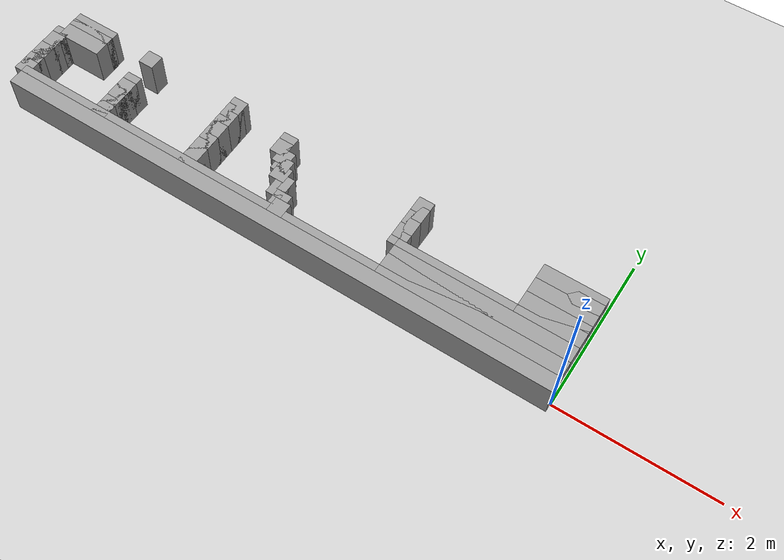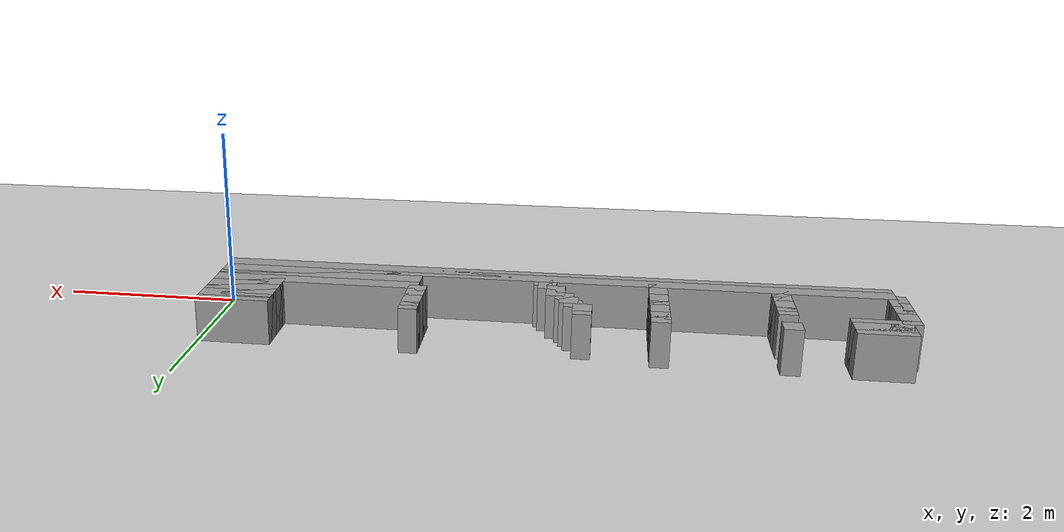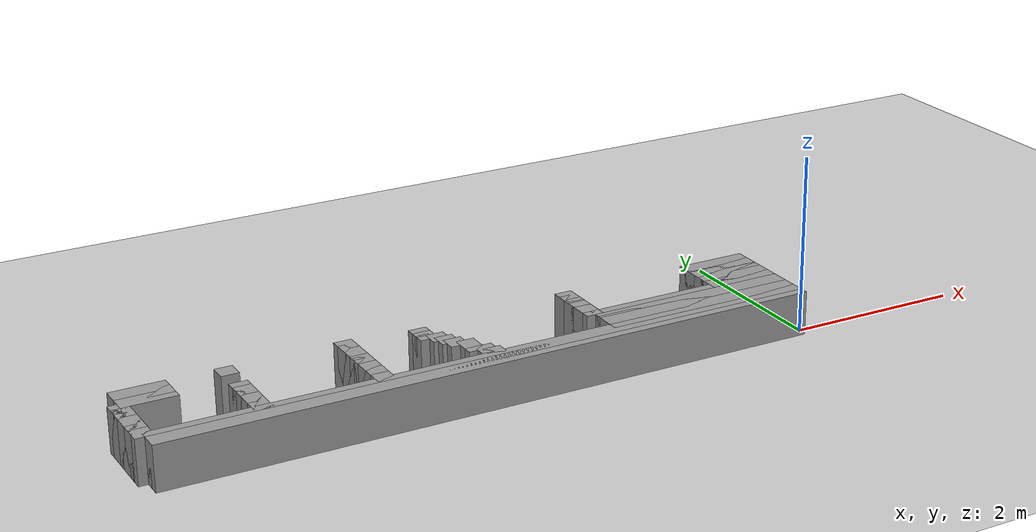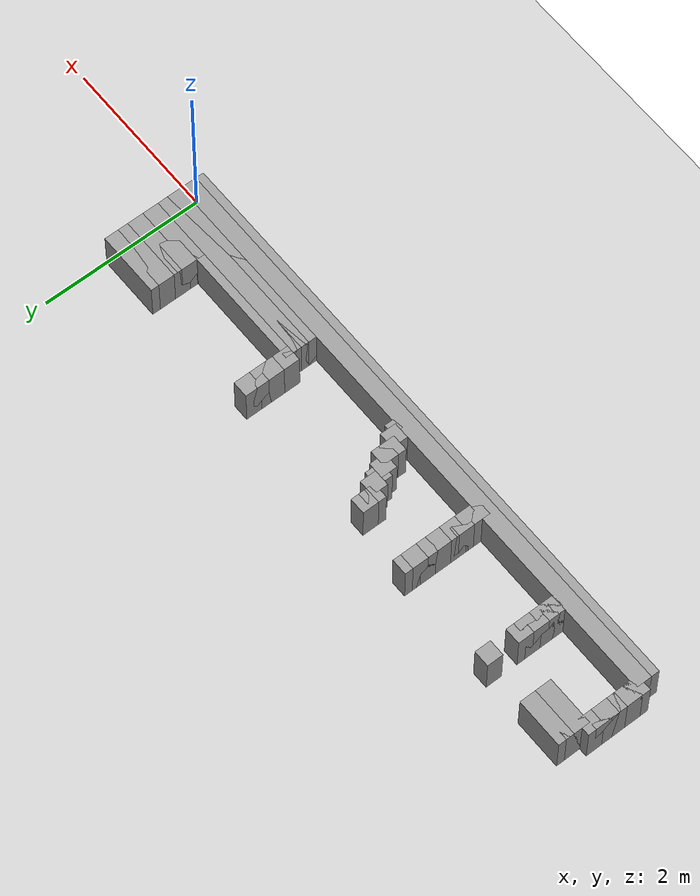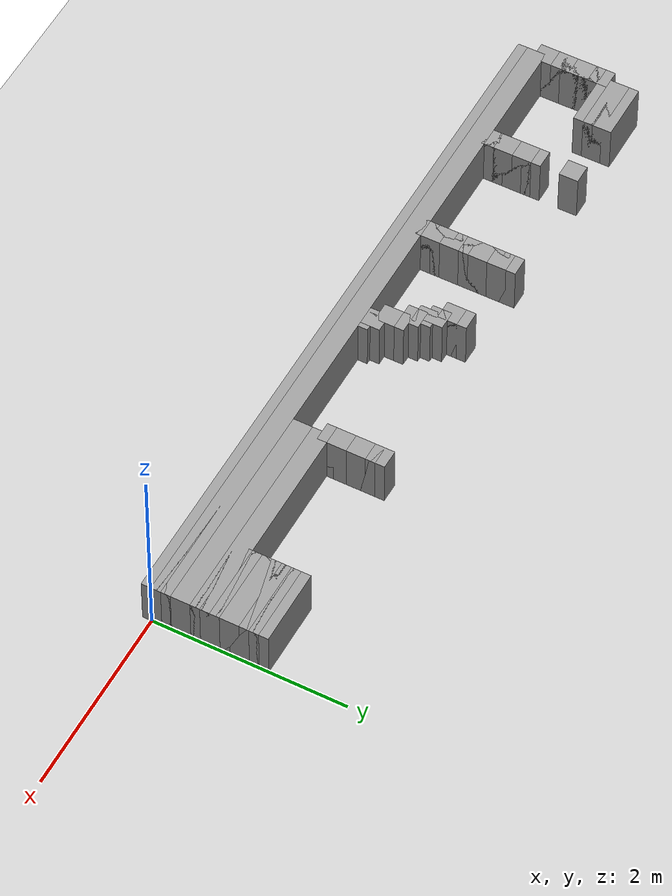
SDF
<sdf version="1.6">
 <world name="GridMap">
  <include><uri>model://sun</uri></include>
  <include><uri>model://ground_plane</uri></include>
  <model name="GridMap">
   <link name="Wall_(37.0,0.0)">
    <collision name="Wall_(37.0,0.0)_Collision">
     <geometry><box><size>7.4 0.2 0.5</size></box></geometry>
     <pose>-3.7 0.0 0.25 0 -0 0</pose>
    </collision>
    <inertial>
     <mass>0.5</mass>
     <pose>0 0.01 0 0 0 0</pose>
     <inertia><ixx>0.004</ixx><ixy>0.001</ixy><ixz>0</ixz><iyy>0.006</iyy><iyz>0</iyz><izz>0.007</izz></inertia>
    </inertial>
    <visual name="Wall_(37.0,0.0)_Visual">
     <geometry><box><size>7.4 0.2 0.5</size></box></geometry>
     <pose>-3.7 0.0 0.25 0 -0 0</pose>
     <material>
      <script><uri>file://media/materials/scripts/gazebo.material</uri><name>Gazebo/Grey</name></script>
      <ambient>1 1 1 1</ambient>
     </material>
     <meta><layer>0</layer></meta>
    </visual>
   </link>
   <link name="Wall_(37.0,1.0)">
    <collision name="Wall_(37.0,1.0)_Collision">
     <geometry><box><size>7.4 0.2 0.5</size></box></geometry>
     <pose>-3.7 0.1 0.25 0 -0 0</pose>
    </collision>
    <inertial>
     <mass>0.5</mass>
     <pose>0 0.01 0 0 0 0</pose>
     <inertia><ixx>0.004</ixx><ixy>0.001</ixy><ixz>0</ixz><iyy>0.006</iyy><iyz>0</iyz><izz>0.007</izz></inertia>
    </inertial>
    <visual name="Wall_(37.0,1.0)_Visual">
     <geometry><box><size>7.4 0.2 0.5</size></box></geometry>
     <pose>-3.7 0.1 0.25 0 -0 0</pose>
     <material>
      <script><uri>file://media/materials/scripts/gazebo.material</uri><name>Gazebo/Grey</name></script>
      <ambient>1 1 1 1</ambient>
     </material>
     <meta><layer>0</layer></meta>
    </visual>
   </link>
   <link name="Wall_(11.5,2.0)">
    <collision name="Wall_(11.5,2.0)_Collision">
     <geometry><box><size>2.3000000000000003 0.2 0.5</size></box></geometry>
     <pose>-1.1500000000000001 0.2 0.25 0 -0 0</pose>
    </collision>
    <inertial>
     <mass>0.5</mass>
     <pose>0 0.01 0 0 0 0</pose>
     <inertia><ixx>0.004</ixx><ixy>0.001</ixy><ixz>0</ixz><iyy>0.006</iyy><iyz>0</iyz><izz>0.007</izz></inertia>
    </inertial>
    <visual name="Wall_(11.5,2.0)_Visual">
     <geometry><box><size>2.3000000000000003 0.2 0.5</size></box></geometry>
     <pose>-1.1500000000000001 0.2 0.25 0 -0 0</pose>
     <material>
      <script><uri>file://media/materials/scripts/gazebo.material</uri><name>Gazebo/Grey</name></script>
      <ambient>1 1 1 1</ambient>
     </material>
     <meta><layer>0</layer></meta>
    </visual>
   </link>
   <link name="Wall_(36.5,2.0)">
    <collision name="Wall_(36.5,2.0)_Collision">
     <geometry><box><size>0.2 0.2 0.5</size></box></geometry>
     <pose>-3.6500000000000004 0.2 0.25 0 -0 0</pose>
    </collision>
    <inertial>
     <mass>0.5</mass>
     <pose>0 0.01 0 0 0 0</pose>
     <inertia><ixx>0.004</ixx><ixy>0.001</ixy><ixz>0</ixz><iyy>0.006</iyy><iyz>0</iyz><izz>0.007</izz></inertia>
    </inertial>
    <visual name="Wall_(36.5,2.0)_Visual">
     <geometry><box><size>0.2 0.2 0.5</size></box></geometry>
     <pose>-3.6500000000000004 0.2 0.25 0 -0 0</pose>
     <material>
      <script><uri>file://media/materials/scripts/gazebo.material</uri><name>Gazebo/Grey</name></script>
      <ambient>1 1 1 1</ambient>
     </material>
     <meta><layer>0</layer></meta>
    </visual>
   </link>
   <link name="Wall_(49.0,2.0)">
    <collision name="Wall_(49.0,2.0)_Collision">
     <geometry><box><size>0.2 0.2 0.5</size></box></geometry>
     <pose>-4.9 0.2 0.25 0 -0 0</pose>
    </collision>
    <inertial>
     <mass>0.5</mass>
     <pose>0 0.01 0 0 0 0</pose>
     <inertia><ixx>0.004</ixx><ixy>0.001</ixy><ixz>0</ixz><iyy>0.006</iyy><iyz>0</iyz><izz>0.007</izz></inertia>
    </inertial>
    <visual name="Wall_(49.0,2.0)_Visual">
     <geometry><box><size>0.2 0.2 0.5</size></box></geometry>
     <pose>-4.9 0.2 0.25 0 -0 0</pose>
     <material>
      <script><uri>file://media/materials/scripts/gazebo.material</uri><name>Gazebo/Grey</name></script>
      <ambient>1 1 1 1</ambient>
     </material>
     <meta><layer>0</layer></meta>
    </visual>
   </link>
   <link name="Wall_(62.0,2.0)">
    <collision name="Wall_(62.0,2.0)_Collision">
     <geometry><box><size>0.2 0.2 0.5</size></box></geometry>
     <pose>-6.2 0.2 0.25 0 -0 0</pose>
    </collision>
    <inertial>
     <mass>0.5</mass>
     <pose>0 0.01 0 0 0 0</pose>
     <inertia><ixx>0.004</ixx><ixy>0.001</ixy><ixz>0</ixz><iyy>0.006</iyy><iyz>0</iyz><izz>0.007</izz></inertia>
    </inertial>
    <visual name="Wall_(62.0,2.0)_Visual">
     <geometry><box><size>0.2 0.2 0.5</size></box></geometry>
     <pose>-6.2 0.2 0.25 0 -0 0</pose>
     <material>
      <script><uri>file://media/materials/scripts/gazebo.material</uri><name>Gazebo/Grey</name></script>
      <ambient>1 1 1 1</ambient>
     </material>
     <meta><layer>0</layer></meta>
    </visual>
   </link>
   <link name="Wall_(74.0,2.0)">
    <collision name="Wall_(74.0,2.0)_Collision">
     <geometry><box><size>0.2 0.2 0.5</size></box></geometry>
     <pose>-7.4 0.2 0.25 0 -0 0</pose>
    </collision>
    <inertial>
     <mass>0.5</mass>
     <pose>0 0.01 0 0 0 0</pose>
     <inertia><ixx>0.004</ixx><ixy>0.001</ixy><ixz>0</ixz><iyy>0.006</iyy><iyz>0</iyz><izz>0.007</izz></inertia>
    </inertial>
    <visual name="Wall_(74.0,2.0)_Visual">
     <geometry><box><size>0.2 0.2 0.5</size></box></geometry>
     <pose>-7.4 0.2 0.25 0 -0 0</pose>
     <material>
      <script><uri>file://media/materials/scripts/gazebo.material</uri><name>Gazebo/Grey</name></script>
      <ambient>1 1 1 1</ambient>
     </material>
     <meta><layer>0</layer></meta>
    </visual>
   </link>
   <link name="Wall_(11.5,3.0)">
    <collision name="Wall_(11.5,3.0)_Collision">
     <geometry><box><size>2.3000000000000003 0.2 0.5</size></box></geometry>
     <pose>-1.1500000000000001 0.30000000000000004 0.25 0 -0 0</pose>
    </collision>
    <inertial>
     <mass>0.5</mass>
     <pose>0 0.01 0 0 0 0</pose>
     <inertia><ixx>0.004</ixx><ixy>0.001</ixy><ixz>0</ixz><iyy>0.006</iyy><iyz>0</iyz><izz>0.007</izz></inertia>
    </inertial>
    <visual name="Wall_(11.5,3.0)_Visual">
     <geometry><box><size>2.3000000000000003 0.2 0.5</size></box></geometry>
     <pose>-1.1500000000000001 0.30000000000000004 0.25 0 -0 0</pose>
     <material>
      <script><uri>file://media/materials/scripts/gazebo.material</uri><name>Gazebo/Grey</name></script>
      <ambient>1 1 1 1</ambient>
     </material>
     <meta><layer>0</layer></meta>
    </visual>
   </link>
   <link name="Wall_(37.0,3.0)">
    <collision name="Wall_(37.0,3.0)_Collision">
     <geometry><box><size>0.2 0.2 0.5</size></box></geometry>
     <pose>-3.7 0.30000000000000004 0.25 0 -0 0</pose>
    </collision>
    <inertial>
     <mass>0.5</mass>
     <pose>0 0.01 0 0 0 0</pose>
     <inertia><ixx>0.004</ixx><ixy>0.001</ixy><ixz>0</ixz><iyy>0.006</iyy><iyz>0</iyz><izz>0.007</izz></inertia>
    </inertial>
    <visual name="Wall_(37.0,3.0)_Visual">
     <geometry><box><size>0.2 0.2 0.5</size></box></geometry>
     <pose>-3.7 0.30000000000000004 0.25 0 -0 0</pose>
     <material>
      <script><uri>file://media/materials/scripts/gazebo.material</uri><name>Gazebo/Grey</name></script>
      <ambient>1 1 1 1</ambient>
     </material>
     <meta><layer>0</layer></meta>
    </visual>
   </link>
   <link name="Wall_(49.0,3.0)">
    <collision name="Wall_(49.0,3.0)_Collision">
     <geometry><box><size>0.2 0.2 0.5</size></box></geometry>
     <pose>-4.9 0.30000000000000004 0.25 0 -0 0</pose>
    </collision>
    <inertial>
     <mass>0.5</mass>
     <pose>0 0.01 0 0 0 0</pose>
     <inertia><ixx>0.004</ixx><ixy>0.001</ixy><ixz>0</ixz><iyy>0.006</iyy><iyz>0</iyz><izz>0.007</izz></inertia>
    </inertial>
    <visual name="Wall_(49.0,3.0)_Visual">
     <geometry><box><size>0.2 0.2 0.5</size></box></geometry>
     <pose>-4.9 0.30000000000000004 0.25 0 -0 0</pose>
     <material>
      <script><uri>file://media/materials/scripts/gazebo.material</uri><name>Gazebo/Grey</name></script>
      <ambient>1 1 1 1</ambient>
     </material>
     <meta><layer>0</layer></meta>
    </visual>
   </link>
   <link name="Wall_(62.0,3.0)">
    <collision name="Wall_(62.0,3.0)_Collision">
     <geometry><box><size>0.2 0.2 0.5</size></box></geometry>
     <pose>-6.2 0.30000000000000004 0.25 0 -0 0</pose>
    </collision>
    <inertial>
     <mass>0.5</mass>
     <pose>0 0.01 0 0 0 0</pose>
     <inertia><ixx>0.004</ixx><ixy>0.001</ixy><ixz>0</ixz><iyy>0.006</iyy><iyz>0</iyz><izz>0.007</izz></inertia>
    </inertial>
    <visual name="Wall_(62.0,3.0)_Visual">
     <geometry><box><size>0.2 0.2 0.5</size></box></geometry>
     <pose>-6.2 0.30000000000000004 0.25 0 -0 0</pose>
     <material>
      <script><uri>file://media/materials/scripts/gazebo.material</uri><name>Gazebo/Grey</name></script>
      <ambient>1 1 1 1</ambient>
     </material>
     <meta><layer>0</layer></meta>
    </visual>
   </link>
   <link name="Wall_(74.0,3.0)">
    <collision name="Wall_(74.0,3.0)_Collision">
     <geometry><box><size>0.2 0.2 0.5</size></box></geometry>
     <pose>-7.4 0.30000000000000004 0.25 0 -0 0</pose>
    </collision>
    <inertial>
     <mass>0.5</mass>
     <pose>0 0.01 0 0 0 0</pose>
     <inertia><ixx>0.004</ixx><ixy>0.001</ixy><ixz>0</ixz><iyy>0.006</iyy><iyz>0</iyz><izz>0.007</izz></inertia>
    </inertial>
    <visual name="Wall_(74.0,3.0)_Visual">
     <geometry><box><size>0.2 0.2 0.5</size></box></geometry>
     <pose>-7.4 0.30000000000000004 0.25 0 -0 0</pose>
     <material>
      <script><uri>file://media/materials/scripts/gazebo.material</uri><name>Gazebo/Grey</name></script>
      <ambient>1 1 1 1</ambient>
     </material>
     <meta><layer>0</layer></meta>
    </visual>
   </link>
   <link name="Wall_(11.5,4.0)">
    <collision name="Wall_(11.5,4.0)_Collision">
     <geometry><box><size>2.3000000000000003 0.2 0.5</size></box></geometry>
     <pose>-1.1500000000000001 0.4 0.25 0 -0 0</pose>
    </collision>
    <inertial>
     <mass>0.5</mass>
     <pose>0 0.01 0 0 0 0</pose>
     <inertia><ixx>0.004</ixx><ixy>0.001</ixy><ixz>0</ixz><iyy>0.006</iyy><iyz>0</iyz><izz>0.007</izz></inertia>
    </inertial>
    <visual name="Wall_(11.5,4.0)_Visual">
     <geometry><box><size>2.3000000000000003 0.2 0.5</size></box></geometry>
     <pose>-1.1500000000000001 0.4 0.25 0 -0 0</pose>
     <material>
      <script><uri>file://media/materials/scripts/gazebo.material</uri><name>Gazebo/Grey</name></script>
      <ambient>1 1 1 1</ambient>
     </material>
     <meta><layer>0</layer></meta>
    </visual>
   </link>
   <link name="Wall_(38.0,4.0)">
    <collision name="Wall_(38.0,4.0)_Collision">
     <geometry><box><size>0.2 0.2 0.5</size></box></geometry>
     <pose>-3.8000000000000003 0.4 0.25 0 -0 0</pose>
    </collision>
    <inertial>
     <mass>0.5</mass>
     <pose>0 0.01 0 0 0 0</pose>
     <inertia><ixx>0.004</ixx><ixy>0.001</ixy><ixz>0</ixz><iyy>0.006</iyy><iyz>0</iyz><izz>0.007</izz></inertia>
    </inertial>
    <visual name="Wall_(38.0,4.0)_Visual">
     <geometry><box><size>0.2 0.2 0.5</size></box></geometry>
     <pose>-3.8000000000000003 0.4 0.25 0 -0 0</pose>
     <material>
      <script><uri>file://media/materials/scripts/gazebo.material</uri><name>Gazebo/Grey</name></script>
      <ambient>1 1 1 1</ambient>
     </material>
     <meta><layer>0</layer></meta>
    </visual>
   </link>
   <link name="Wall_(49.0,4.0)">
    <collision name="Wall_(49.0,4.0)_Collision">
     <geometry><box><size>0.2 0.2 0.5</size></box></geometry>
     <pose>-4.9 0.4 0.25 0 -0 0</pose>
    </collision>
    <inertial>
     <mass>0.5</mass>
     <pose>0 0.01 0 0 0 0</pose>
     <inertia><ixx>0.004</ixx><ixy>0.001</ixy><ixz>0</ixz><iyy>0.006</iyy><iyz>0</iyz><izz>0.007</izz></inertia>
    </inertial>
    <visual name="Wall_(49.0,4.0)_Visual">
     <geometry><box><size>0.2 0.2 0.5</size></box></geometry>
     <pose>-4.9 0.4 0.25 0 -0 0</pose>
     <material>
      <script><uri>file://media/materials/scripts/gazebo.material</uri><name>Gazebo/Grey</name></script>
      <ambient>1 1 1 1</ambient>
     </material>
     <meta><layer>0</layer></meta>
    </visual>
   </link>
   <link name="Wall_(62.0,4.0)">
    <collision name="Wall_(62.0,4.0)_Collision">
     <geometry><box><size>0.2 0.2 0.5</size></box></geometry>
     <pose>-6.2 0.4 0.25 0 -0 0</pose>
    </collision>
    <inertial>
     <mass>0.5</mass>
     <pose>0 0.01 0 0 0 0</pose>
     <inertia><ixx>0.004</ixx><ixy>0.001</ixy><ixz>0</ixz><iyy>0.006</iyy><iyz>0</iyz><izz>0.007</izz></inertia>
    </inertial>
    <visual name="Wall_(62.0,4.0)_Visual">
     <geometry><box><size>0.2 0.2 0.5</size></box></geometry>
     <pose>-6.2 0.4 0.25 0 -0 0</pose>
     <material>
      <script><uri>file://media/materials/scripts/gazebo.material</uri><name>Gazebo/Grey</name></script>
      <ambient>1 1 1 1</ambient>
     </material>
     <meta><layer>0</layer></meta>
    </visual>
   </link>
   <link name="Wall_(74.0,4.0)">
    <collision name="Wall_(74.0,4.0)_Collision">
     <geometry><box><size>0.2 0.2 0.5</size></box></geometry>
     <pose>-7.4 0.4 0.25 0 -0 0</pose>
    </collision>
    <inertial>
     <mass>0.5</mass>
     <pose>0 0.01 0 0 0 0</pose>
     <inertia><ixx>0.004</ixx><ixy>0.001</ixy><ixz>0</ixz><iyy>0.006</iyy><iyz>0</iyz><izz>0.007</izz></inertia>
    </inertial>
    <visual name="Wall_(74.0,4.0)_Visual">
     <geometry><box><size>0.2 0.2 0.5</size></box></geometry>
     <pose>-7.4 0.4 0.25 0 -0 0</pose>
     <material>
      <script><uri>file://media/materials/scripts/gazebo.material</uri><name>Gazebo/Grey</name></script>
      <ambient>1 1 1 1</ambient>
     </material>
     <meta><layer>0</layer></meta>
    </visual>
   </link>
   <link name="Wall_(11.5,5.0)">
    <collision name="Wall_(11.5,5.0)_Collision">
     <geometry><box><size>2.3000000000000003 0.2 0.5</size></box></geometry>
     <pose>-1.1500000000000001 0.5 0.25 0 -0 0</pose>
    </collision>
    <inertial>
     <mass>0.5</mass>
     <pose>0 0.01 0 0 0 0</pose>
     <inertia><ixx>0.004</ixx><ixy>0.001</ixy><ixz>0</ixz><iyy>0.006</iyy><iyz>0</iyz><izz>0.007</izz></inertia>
    </inertial>
    <visual name="Wall_(11.5,5.0)_Visual">
     <geometry><box><size>2.3000000000000003 0.2 0.5</size></box></geometry>
     <pose>-1.1500000000000001 0.5 0.25 0 -0 0</pose>
     <material>
      <script><uri>file://media/materials/scripts/gazebo.material</uri><name>Gazebo/Grey</name></script>
      <ambient>1 1 1 1</ambient>
     </material>
     <meta><layer>0</layer></meta>
    </visual>
   </link>
   <link name="Wall_(38.0,5.0)">
    <collision name="Wall_(38.0,5.0)_Collision">
     <geometry><box><size>0.2 0.2 0.5</size></box></geometry>
     <pose>-3.8000000000000003 0.5 0.25 0 -0 0</pose>
    </collision>
    <inertial>
     <mass>0.5</mass>
     <pose>0 0.01 0 0 0 0</pose>
     <inertia><ixx>0.004</ixx><ixy>0.001</ixy><ixz>0</ixz><iyy>0.006</iyy><iyz>0</iyz><izz>0.007</izz></inertia>
    </inertial>
    <visual name="Wall_(38.0,5.0)_Visual">
     <geometry><box><size>0.2 0.2 0.5</size></box></geometry>
     <pose>-3.8000000000000003 0.5 0.25 0 -0 0</pose>
     <material>
      <script><uri>file://media/materials/scripts/gazebo.material</uri><name>Gazebo/Grey</name></script>
      <ambient>1 1 1 1</ambient>
     </material>
     <meta><layer>0</layer></meta>
    </visual>
   </link>
   <link name="Wall_(49.0,5.0)">
    <collision name="Wall_(49.0,5.0)_Collision">
     <geometry><box><size>0.2 0.2 0.5</size></box></geometry>
     <pose>-4.9 0.5 0.25 0 -0 0</pose>
    </collision>
    <inertial>
     <mass>0.5</mass>
     <pose>0 0.01 0 0 0 0</pose>
     <inertia><ixx>0.004</ixx><ixy>0.001</ixy><ixz>0</ixz><iyy>0.006</iyy><iyz>0</iyz><izz>0.007</izz></inertia>
    </inertial>
    <visual name="Wall_(49.0,5.0)_Visual">
     <geometry><box><size>0.2 0.2 0.5</size></box></geometry>
     <pose>-4.9 0.5 0.25 0 -0 0</pose>
     <material>
      <script><uri>file://media/materials/scripts/gazebo.material</uri><name>Gazebo/Grey</name></script>
      <ambient>1 1 1 1</ambient>
     </material>
     <meta><layer>0</layer></meta>
    </visual>
   </link>
   <link name="Wall_(62.0,5.0)">
    <collision name="Wall_(62.0,5.0)_Collision">
     <geometry><box><size>0.2 0.2 0.5</size></box></geometry>
     <pose>-6.2 0.5 0.25 0 -0 0</pose>
    </collision>
    <inertial>
     <mass>0.5</mass>
     <pose>0 0.01 0 0 0 0</pose>
     <inertia><ixx>0.004</ixx><ixy>0.001</ixy><ixz>0</ixz><iyy>0.006</iyy><iyz>0</iyz><izz>0.007</izz></inertia>
    </inertial>
    <visual name="Wall_(62.0,5.0)_Visual">
     <geometry><box><size>0.2 0.2 0.5</size></box></geometry>
     <pose>-6.2 0.5 0.25 0 -0 0</pose>
     <material>
      <script><uri>file://media/materials/scripts/gazebo.material</uri><name>Gazebo/Grey</name></script>
      <ambient>1 1 1 1</ambient>
     </material>
     <meta><layer>0</layer></meta>
    </visual>
   </link>
   <link name="Wall_(74.0,5.0)">
    <collision name="Wall_(74.0,5.0)_Collision">
     <geometry><box><size>0.2 0.2 0.5</size></box></geometry>
     <pose>-7.4 0.5 0.25 0 -0 0</pose>
    </collision>
    <inertial>
     <mass>0.5</mass>
     <pose>0 0.01 0 0 0 0</pose>
     <inertia><ixx>0.004</ixx><ixy>0.001</ixy><ixz>0</ixz><iyy>0.006</iyy><iyz>0</iyz><izz>0.007</izz></inertia>
    </inertial>
    <visual name="Wall_(74.0,5.0)_Visual">
     <geometry><box><size>0.2 0.2 0.5</size></box></geometry>
     <pose>-7.4 0.5 0.25 0 -0 0</pose>
     <material>
      <script><uri>file://media/materials/scripts/gazebo.material</uri><name>Gazebo/Grey</name></script>
      <ambient>1 1 1 1</ambient>
     </material>
     <meta><layer>0</layer></meta>
    </visual>
   </link>
   <link name="Wall_(4.0,6.0)">
    <collision name="Wall_(4.0,6.0)_Collision">
     <geometry><box><size>0.8 0.2 0.5</size></box></geometry>
     <pose>-0.4 0.6000000000000001 0.25 0 -0 0</pose>
    </collision>
    <inertial>
     <mass>0.5</mass>
     <pose>0 0.01 0 0 0 0</pose>
     <inertia><ixx>0.004</ixx><ixy>0.001</ixy><ixz>0</ixz><iyy>0.006</iyy><iyz>0</iyz><izz>0.007</izz></inertia>
    </inertial>
    <visual name="Wall_(4.0,6.0)_Visual">
     <geometry><box><size>0.8 0.2 0.5</size></box></geometry>
     <pose>-0.4 0.6000000000000001 0.25 0 -0 0</pose>
     <material>
      <script><uri>file://media/materials/scripts/gazebo.material</uri><name>Gazebo/Grey</name></script>
      <ambient>1 1 1 1</ambient>
     </material>
     <meta><layer>0</layer></meta>
    </visual>
   </link>
   <link name="Wall_(23.0,6.0)">
    <collision name="Wall_(23.0,6.0)_Collision">
     <geometry><box><size>0.2 0.2 0.5</size></box></geometry>
     <pose>-2.3000000000000003 0.6000000000000001 0.25 0 -0 0</pose>
    </collision>
    <inertial>
     <mass>0.5</mass>
     <pose>0 0.01 0 0 0 0</pose>
     <inertia><ixx>0.004</ixx><ixy>0.001</ixy><ixz>0</ixz><iyy>0.006</iyy><iyz>0</iyz><izz>0.007</izz></inertia>
    </inertial>
    <visual name="Wall_(23.0,6.0)_Visual">
     <geometry><box><size>0.2 0.2 0.5</size></box></geometry>
     <pose>-2.3000000000000003 0.6000000000000001 0.25 0 -0 0</pose>
     <material>
      <script><uri>file://media/materials/scripts/gazebo.material</uri><name>Gazebo/Grey</name></script>
      <ambient>1 1 1 1</ambient>
     </material>
     <meta><layer>0</layer></meta>
    </visual>
   </link>
   <link name="Wall_(39.0,6.0)">
    <collision name="Wall_(39.0,6.0)_Collision">
     <geometry><box><size>0.2 0.2 0.5</size></box></geometry>
     <pose>-3.9000000000000004 0.6000000000000001 0.25 0 -0 0</pose>
    </collision>
    <inertial>
     <mass>0.5</mass>
     <pose>0 0.01 0 0 0 0</pose>
     <inertia><ixx>0.004</ixx><ixy>0.001</ixy><ixz>0</ixz><iyy>0.006</iyy><iyz>0</iyz><izz>0.007</izz></inertia>
    </inertial>
    <visual name="Wall_(39.0,6.0)_Visual">
     <geometry><box><size>0.2 0.2 0.5</size></box></geometry>
     <pose>-3.9000000000000004 0.6000000000000001 0.25 0 -0 0</pose>
     <material>
      <script><uri>file://media/materials/scripts/gazebo.material</uri><name>Gazebo/Grey</name></script>
      <ambient>1 1 1 1</ambient>
     </material>
     <meta><layer>0</layer></meta>
    </visual>
   </link>
   <link name="Wall_(49.0,6.0)">
    <collision name="Wall_(49.0,6.0)_Collision">
     <geometry><box><size>0.2 0.2 0.5</size></box></geometry>
     <pose>-4.9 0.6000000000000001 0.25 0 -0 0</pose>
    </collision>
    <inertial>
     <mass>0.5</mass>
     <pose>0 0.01 0 0 0 0</pose>
     <inertia><ixx>0.004</ixx><ixy>0.001</ixy><ixz>0</ixz><iyy>0.006</iyy><iyz>0</iyz><izz>0.007</izz></inertia>
    </inertial>
    <visual name="Wall_(49.0,6.0)_Visual">
     <geometry><box><size>0.2 0.2 0.5</size></box></geometry>
     <pose>-4.9 0.6000000000000001 0.25 0 -0 0</pose>
     <material>
      <script><uri>file://media/materials/scripts/gazebo.material</uri><name>Gazebo/Grey</name></script>
      <ambient>1 1 1 1</ambient>
     </material>
     <meta><layer>0</layer></meta>
    </visual>
   </link>
   <link name="Wall_(62.0,6.0)">
    <collision name="Wall_(62.0,6.0)_Collision">
     <geometry><box><size>0.2 0.2 0.5</size></box></geometry>
     <pose>-6.2 0.6000000000000001 0.25 0 -0 0</pose>
    </collision>
    <inertial>
     <mass>0.5</mass>
     <pose>0 0.01 0 0 0 0</pose>
     <inertia><ixx>0.004</ixx><ixy>0.001</ixy><ixz>0</ixz><iyy>0.006</iyy><iyz>0</iyz><izz>0.007</izz></inertia>
    </inertial>
    <visual name="Wall_(62.0,6.0)_Visual">
     <geometry><box><size>0.2 0.2 0.5</size></box></geometry>
     <pose>-6.2 0.6000000000000001 0.25 0 -0 0</pose>
     <material>
      <script><uri>file://media/materials/scripts/gazebo.material</uri><name>Gazebo/Grey</name></script>
      <ambient>1 1 1 1</ambient>
     </material>
     <meta><layer>0</layer></meta>
    </visual>
   </link>
   <link name="Wall_(74.0,6.0)">
    <collision name="Wall_(74.0,6.0)_Collision">
     <geometry><box><size>0.2 0.2 0.5</size></box></geometry>
     <pose>-7.4 0.6000000000000001 0.25 0 -0 0</pose>
    </collision>
    <inertial>
     <mass>0.5</mass>
     <pose>0 0.01 0 0 0 0</pose>
     <inertia><ixx>0.004</ixx><ixy>0.001</ixy><ixz>0</ixz><iyy>0.006</iyy><iyz>0</iyz><izz>0.007</izz></inertia>
    </inertial>
    <visual name="Wall_(74.0,6.0)_Visual">
     <geometry><box><size>0.2 0.2 0.5</size></box></geometry>
     <pose>-7.4 0.6000000000000001 0.25 0 -0 0</pose>
     <material>
      <script><uri>file://media/materials/scripts/gazebo.material</uri><name>Gazebo/Grey</name></script>
      <ambient>1 1 1 1</ambient>
     </material>
     <meta><layer>0</layer></meta>
    </visual>
   </link>
   <link name="Wall_(4.0,7.0)">
    <collision name="Wall_(4.0,7.0)_Collision">
     <geometry><box><size>0.8 0.2 0.5</size></box></geometry>
     <pose>-0.4 0.7000000000000001 0.25 0 -0 0</pose>
    </collision>
    <inertial>
     <mass>0.5</mass>
     <pose>0 0.01 0 0 0 0</pose>
     <inertia><ixx>0.004</ixx><ixy>0.001</ixy><ixz>0</ixz><iyy>0.006</iyy><iyz>0</iyz><izz>0.007</izz></inertia>
    </inertial>
    <visual name="Wall_(4.0,7.0)_Visual">
     <geometry><box><size>0.8 0.2 0.5</size></box></geometry>
     <pose>-0.4 0.7000000000000001 0.25 0 -0 0</pose>
     <material>
      <script><uri>file://media/materials/scripts/gazebo.material</uri><name>Gazebo/Grey</name></script>
      <ambient>1 1 1 1</ambient>
     </material>
     <meta><layer>0</layer></meta>
    </visual>
   </link>
   <link name="Wall_(23.0,7.0)">
    <collision name="Wall_(23.0,7.0)_Collision">
     <geometry><box><size>0.2 0.2 0.5</size></box></geometry>
     <pose>-2.3000000000000003 0.7000000000000001 0.25 0 -0 0</pose>
    </collision>
    <inertial>
     <mass>0.5</mass>
     <pose>0 0.01 0 0 0 0</pose>
     <inertia><ixx>0.004</ixx><ixy>0.001</ixy><ixz>0</ixz><iyy>0.006</iyy><iyz>0</iyz><izz>0.007</izz></inertia>
    </inertial>
    <visual name="Wall_(23.0,7.0)_Visual">
     <geometry><box><size>0.2 0.2 0.5</size></box></geometry>
     <pose>-2.3000000000000003 0.7000000000000001 0.25 0 -0 0</pose>
     <material>
      <script><uri>file://media/materials/scripts/gazebo.material</uri><name>Gazebo/Grey</name></script>
      <ambient>1 1 1 1</ambient>
     </material>
     <meta><layer>0</layer></meta>
    </visual>
   </link>
   <link name="Wall_(39.5,7.0)">
    <collision name="Wall_(39.5,7.0)_Collision">
     <geometry><box><size>0.2 0.2 0.5</size></box></geometry>
     <pose>-3.95 0.7000000000000001 0.25 0 -0 0</pose>
    </collision>
    <inertial>
     <mass>0.5</mass>
     <pose>0 0.01 0 0 0 0</pose>
     <inertia><ixx>0.004</ixx><ixy>0.001</ixy><ixz>0</ixz><iyy>0.006</iyy><iyz>0</iyz><izz>0.007</izz></inertia>
    </inertial>
    <visual name="Wall_(39.5,7.0)_Visual">
     <geometry><box><size>0.2 0.2 0.5</size></box></geometry>
     <pose>-3.95 0.7000000000000001 0.25 0 -0 0</pose>
     <material>
      <script><uri>file://media/materials/scripts/gazebo.material</uri><name>Gazebo/Grey</name></script>
      <ambient>1 1 1 1</ambient>
     </material>
     <meta><layer>0</layer></meta>
    </visual>
   </link>
   <link name="Wall_(49.0,7.0)">
    <collision name="Wall_(49.0,7.0)_Collision">
     <geometry><box><size>0.2 0.2 0.5</size></box></geometry>
     <pose>-4.9 0.7000000000000001 0.25 0 -0 0</pose>
    </collision>
    <inertial>
     <mass>0.5</mass>
     <pose>0 0.01 0 0 0 0</pose>
     <inertia><ixx>0.004</ixx><ixy>0.001</ixy><ixz>0</ixz><iyy>0.006</iyy><iyz>0</iyz><izz>0.007</izz></inertia>
    </inertial>
    <visual name="Wall_(49.0,7.0)_Visual">
     <geometry><box><size>0.2 0.2 0.5</size></box></geometry>
     <pose>-4.9 0.7000000000000001 0.25 0 -0 0</pose>
     <material>
      <script><uri>file://media/materials/scripts/gazebo.material</uri><name>Gazebo/Grey</name></script>
      <ambient>1 1 1 1</ambient>
     </material>
     <meta><layer>0</layer></meta>
    </visual>
   </link>
   <link name="Wall_(62.0,7.0)">
    <collision name="Wall_(62.0,7.0)_Collision">
     <geometry><box><size>0.2 0.2 0.5</size></box></geometry>
     <pose>-6.2 0.7000000000000001 0.25 0 -0 0</pose>
    </collision>
    <inertial>
     <mass>0.5</mass>
     <pose>0 0.01 0 0 0 0</pose>
     <inertia><ixx>0.004</ixx><ixy>0.001</ixy><ixz>0</ixz><iyy>0.006</iyy><iyz>0</iyz><izz>0.007</izz></inertia>
    </inertial>
    <visual name="Wall_(62.0,7.0)_Visual">
     <geometry><box><size>0.2 0.2 0.5</size></box></geometry>
     <pose>-6.2 0.7000000000000001 0.25 0 -0 0</pose>
     <material>
      <script><uri>file://media/materials/scripts/gazebo.material</uri><name>Gazebo/Grey</name></script>
      <ambient>1 1 1 1</ambient>
     </material>
     <meta><layer>0</layer></meta>
    </visual>
   </link>
   <link name="Wall_(74.0,7.0)">
    <collision name="Wall_(74.0,7.0)_Collision">
     <geometry><box><size>0.2 0.2 0.5</size></box></geometry>
     <pose>-7.4 0.7000000000000001 0.25 0 -0 0</pose>
    </collision>
    <inertial>
     <mass>0.5</mass>
     <pose>0 0.01 0 0 0 0</pose>
     <inertia><ixx>0.004</ixx><ixy>0.001</ixy><ixz>0</ixz><iyy>0.006</iyy><iyz>0</iyz><izz>0.007</izz></inertia>
    </inertial>
    <visual name="Wall_(74.0,7.0)_Visual">
     <geometry><box><size>0.2 0.2 0.5</size></box></geometry>
     <pose>-7.4 0.7000000000000001 0.25 0 -0 0</pose>
     <material>
      <script><uri>file://media/materials/scripts/gazebo.material</uri><name>Gazebo/Grey</name></script>
      <ambient>1 1 1 1</ambient>
     </material>
     <meta><layer>0</layer></meta>
    </visual>
   </link>
   <link name="Wall_(4.0,8.0)">
    <collision name="Wall_(4.0,8.0)_Collision">
     <geometry><box><size>0.8 0.2 0.5</size></box></geometry>
     <pose>-0.4 0.8 0.25 0 -0 0</pose>
    </collision>
    <inertial>
     <mass>0.5</mass>
     <pose>0 0.01 0 0 0 0</pose>
     <inertia><ixx>0.004</ixx><ixy>0.001</ixy><ixz>0</ixz><iyy>0.006</iyy><iyz>0</iyz><izz>0.007</izz></inertia>
    </inertial>
    <visual name="Wall_(4.0,8.0)_Visual">
     <geometry><box><size>0.8 0.2 0.5</size></box></geometry>
     <pose>-0.4 0.8 0.25 0 -0 0</pose>
     <material>
      <script><uri>file://media/materials/scripts/gazebo.material</uri><name>Gazebo/Grey</name></script>
      <ambient>1 1 1 1</ambient>
     </material>
     <meta><layer>0</layer></meta>
    </visual>
   </link>
   <link name="Wall_(23.0,8.0)">
    <collision name="Wall_(23.0,8.0)_Collision">
     <geometry><box><size>0.2 0.2 0.5</size></box></geometry>
     <pose>-2.3000000000000003 0.8 0.25 0 -0 0</pose>
    </collision>
    <inertial>
     <mass>0.5</mass>
     <pose>0 0.01 0 0 0 0</pose>
     <inertia><ixx>0.004</ixx><ixy>0.001</ixy><ixz>0</ixz><iyy>0.006</iyy><iyz>0</iyz><izz>0.007</izz></inertia>
    </inertial>
    <visual name="Wall_(23.0,8.0)_Visual">
     <geometry><box><size>0.2 0.2 0.5</size></box></geometry>
     <pose>-2.3000000000000003 0.8 0.25 0 -0 0</pose>
     <material>
      <script><uri>file://media/materials/scripts/gazebo.material</uri><name>Gazebo/Grey</name></script>
      <ambient>1 1 1 1</ambient>
     </material>
     <meta><layer>0</layer></meta>
    </visual>
   </link>
   <link name="Wall_(40.0,8.0)">
    <collision name="Wall_(40.0,8.0)_Collision">
     <geometry><box><size>0.2 0.2 0.5</size></box></geometry>
     <pose>-4.0 0.8 0.25 0 -0 0</pose>
    </collision>
    <inertial>
     <mass>0.5</mass>
     <pose>0 0.01 0 0 0 0</pose>
     <inertia><ixx>0.004</ixx><ixy>0.001</ixy><ixz>0</ixz><iyy>0.006</iyy><iyz>0</iyz><izz>0.007</izz></inertia>
    </inertial>
    <visual name="Wall_(40.0,8.0)_Visual">
     <geometry><box><size>0.2 0.2 0.5</size></box></geometry>
     <pose>-4.0 0.8 0.25 0 -0 0</pose>
     <material>
      <script><uri>file://media/materials/scripts/gazebo.material</uri><name>Gazebo/Grey</name></script>
      <ambient>1 1 1 1</ambient>
     </material>
     <meta><layer>0</layer></meta>
    </visual>
   </link>
   <link name="Wall_(49.0,8.0)">
    <collision name="Wall_(49.0,8.0)_Collision">
     <geometry><box><size>0.2 0.2 0.5</size></box></geometry>
     <pose>-4.9 0.8 0.25 0 -0 0</pose>
    </collision>
    <inertial>
     <mass>0.5</mass>
     <pose>0 0.01 0 0 0 0</pose>
     <inertia><ixx>0.004</ixx><ixy>0.001</ixy><ixz>0</ixz><iyy>0.006</iyy><iyz>0</iyz><izz>0.007</izz></inertia>
    </inertial>
    <visual name="Wall_(49.0,8.0)_Visual">
     <geometry><box><size>0.2 0.2 0.5</size></box></geometry>
     <pose>-4.9 0.8 0.25 0 -0 0</pose>
     <material>
      <script><uri>file://media/materials/scripts/gazebo.material</uri><name>Gazebo/Grey</name></script>
      <ambient>1 1 1 1</ambient>
     </material>
     <meta><layer>0</layer></meta>
    </visual>
   </link>
   <link name="Wall_(74.0,8.0)">
    <collision name="Wall_(74.0,8.0)_Collision">
     <geometry><box><size>0.2 0.2 0.5</size></box></geometry>
     <pose>-7.4 0.8 0.25 0 -0 0</pose>
    </collision>
    <inertial>
     <mass>0.5</mass>
     <pose>0 0.01 0 0 0 0</pose>
     <inertia><ixx>0.004</ixx><ixy>0.001</ixy><ixz>0</ixz><iyy>0.006</iyy><iyz>0</iyz><izz>0.007</izz></inertia>
    </inertial>
    <visual name="Wall_(74.0,8.0)_Visual">
     <geometry><box><size>0.2 0.2 0.5</size></box></geometry>
     <pose>-7.4 0.8 0.25 0 -0 0</pose>
     <material>
      <script><uri>file://media/materials/scripts/gazebo.material</uri><name>Gazebo/Grey</name></script>
      <ambient>1 1 1 1</ambient>
     </material>
     <meta><layer>0</layer></meta>
    </visual>
   </link>
   <link name="Wall_(4.0,9.0)">
    <collision name="Wall_(4.0,9.0)_Collision">
     <geometry><box><size>0.8 0.2 0.5</size></box></geometry>
     <pose>-0.4 0.9 0.25 0 -0 0</pose>
    </collision>
    <inertial>
     <mass>0.5</mass>
     <pose>0 0.01 0 0 0 0</pose>
     <inertia><ixx>0.004</ixx><ixy>0.001</ixy><ixz>0</ixz><iyy>0.006</iyy><iyz>0</iyz><izz>0.007</izz></inertia>
    </inertial>
    <visual name="Wall_(4.0,9.0)_Visual">
     <geometry><box><size>0.8 0.2 0.5</size></box></geometry>
     <pose>-0.4 0.9 0.25 0 -0 0</pose>
     <material>
      <script><uri>file://media/materials/scripts/gazebo.material</uri><name>Gazebo/Grey</name></script>
      <ambient>1 1 1 1</ambient>
     </material>
     <meta><layer>0</layer></meta>
    </visual>
   </link>
   <link name="Wall_(23.0,9.0)">
    <collision name="Wall_(23.0,9.0)_Collision">
     <geometry><box><size>0.2 0.2 0.5</size></box></geometry>
     <pose>-2.3000000000000003 0.9 0.25 0 -0 0</pose>
    </collision>
    <inertial>
     <mass>0.5</mass>
     <pose>0 0.01 0 0 0 0</pose>
     <inertia><ixx>0.004</ixx><ixy>0.001</ixy><ixz>0</ixz><iyy>0.006</iyy><iyz>0</iyz><izz>0.007</izz></inertia>
    </inertial>
    <visual name="Wall_(23.0,9.0)_Visual">
     <geometry><box><size>0.2 0.2 0.5</size></box></geometry>
     <pose>-2.3000000000000003 0.9 0.25 0 -0 0</pose>
     <material>
      <script><uri>file://media/materials/scripts/gazebo.material</uri><name>Gazebo/Grey</name></script>
      <ambient>1 1 1 1</ambient>
     </material>
     <meta><layer>0</layer></meta>
    </visual>
   </link>
   <link name="Wall_(41.0,9.0)">
    <collision name="Wall_(41.0,9.0)_Collision">
     <geometry><box><size>0.2 0.2 0.5</size></box></geometry>
     <pose>-4.1000000000000005 0.9 0.25 0 -0 0</pose>
    </collision>
    <inertial>
     <mass>0.5</mass>
     <pose>0 0.01 0 0 0 0</pose>
     <inertia><ixx>0.004</ixx><ixy>0.001</ixy><ixz>0</ixz><iyy>0.006</iyy><iyz>0</iyz><izz>0.007</izz></inertia>
    </inertial>
    <visual name="Wall_(41.0,9.0)_Visual">
     <geometry><box><size>0.2 0.2 0.5</size></box></geometry>
     <pose>-4.1000000000000005 0.9 0.25 0 -0 0</pose>
     <material>
      <script><uri>file://media/materials/scripts/gazebo.material</uri><name>Gazebo/Grey</name></script>
      <ambient>1 1 1 1</ambient>
     </material>
     <meta><layer>0</layer></meta>
    </visual>
   </link>
   <link name="Wall_(49.0,9.0)">
    <collision name="Wall_(49.0,9.0)_Collision">
     <geometry><box><size>0.2 0.2 0.5</size></box></geometry>
     <pose>-4.9 0.9 0.25 0 -0 0</pose>
    </collision>
    <inertial>
     <mass>0.5</mass>
     <pose>0 0.01 0 0 0 0</pose>
     <inertia><ixx>0.004</ixx><ixy>0.001</ixy><ixz>0</ixz><iyy>0.006</iyy><iyz>0</iyz><izz>0.007</izz></inertia>
    </inertial>
    <visual name="Wall_(49.0,9.0)_Visual">
     <geometry><box><size>0.2 0.2 0.5</size></box></geometry>
     <pose>-4.9 0.9 0.25 0 -0 0</pose>
     <material>
      <script><uri>file://media/materials/scripts/gazebo.material</uri><name>Gazebo/Grey</name></script>
      <ambient>1 1 1 1</ambient>
     </material>
     <meta><layer>0</layer></meta>
    </visual>
   </link>
   <link name="Wall_(71.0,9.0)">
    <collision name="Wall_(71.0,9.0)_Collision">
     <geometry><box><size>0.6000000000000001 0.2 0.5</size></box></geometry>
     <pose>-7.1000000000000005 0.9 0.25 0 -0 0</pose>
    </collision>
    <inertial>
     <mass>0.5</mass>
     <pose>0 0.01 0 0 0 0</pose>
     <inertia><ixx>0.004</ixx><ixy>0.001</ixy><ixz>0</ixz><iyy>0.006</iyy><iyz>0</iyz><izz>0.007</izz></inertia>
    </inertial>
    <visual name="Wall_(71.0,9.0)_Visual">
     <geometry><box><size>0.6000000000000001 0.2 0.5</size></box></geometry>
     <pose>-7.1000000000000005 0.9 0.25 0 -0 0</pose>
     <material>
      <script><uri>file://media/materials/scripts/gazebo.material</uri><name>Gazebo/Grey</name></script>
      <ambient>1 1 1 1</ambient>
     </material>
     <meta><layer>0</layer></meta>
    </visual>
   </link>
   <link name="Wall_(4.0,10.0)">
    <collision name="Wall_(4.0,10.0)_Collision">
     <geometry><box><size>0.8 0.2 0.5</size></box></geometry>
     <pose>-0.4 1.0 0.25 0 -0 0</pose>
    </collision>
    <inertial>
     <mass>0.5</mass>
     <pose>0 0.01 0 0 0 0</pose>
     <inertia><ixx>0.004</ixx><ixy>0.001</ixy><ixz>0</ixz><iyy>0.006</iyy><iyz>0</iyz><izz>0.007</izz></inertia>
    </inertial>
    <visual name="Wall_(4.0,10.0)_Visual">
     <geometry><box><size>0.8 0.2 0.5</size></box></geometry>
     <pose>-0.4 1.0 0.25 0 -0 0</pose>
     <material>
      <script><uri>file://media/materials/scripts/gazebo.material</uri><name>Gazebo/Grey</name></script>
      <ambient>1 1 1 1</ambient>
     </material>
     <meta><layer>0</layer></meta>
    </visual>
   </link>
   <link name="Wall_(23.0,10.0)">
    <collision name="Wall_(23.0,10.0)_Collision">
     <geometry><box><size>0.2 0.2 0.5</size></box></geometry>
     <pose>-2.3000000000000003 1.0 0.25 0 -0 0</pose>
    </collision>
    <inertial>
     <mass>0.5</mass>
     <pose>0 0.01 0 0 0 0</pose>
     <inertia><ixx>0.004</ixx><ixy>0.001</ixy><ixz>0</ixz><iyy>0.006</iyy><iyz>0</iyz><izz>0.007</izz></inertia>
    </inertial>
    <visual name="Wall_(23.0,10.0)_Visual">
     <geometry><box><size>0.2 0.2 0.5</size></box></geometry>
     <pose>-2.3000000000000003 1.0 0.25 0 -0 0</pose>
     <material>
      <script><uri>file://media/materials/scripts/gazebo.material</uri><name>Gazebo/Grey</name></script>
      <ambient>1 1 1 1</ambient>
     </material>
     <meta><layer>0</layer></meta>
    </visual>
   </link>
   <link name="Wall_(41.0,10.0)">
    <collision name="Wall_(41.0,10.0)_Collision">
     <geometry><box><size>0.2 0.2 0.5</size></box></geometry>
     <pose>-4.1000000000000005 1.0 0.25 0 -0 0</pose>
    </collision>
    <inertial>
     <mass>0.5</mass>
     <pose>0 0.01 0 0 0 0</pose>
     <inertia><ixx>0.004</ixx><ixy>0.001</ixy><ixz>0</ixz><iyy>0.006</iyy><iyz>0</iyz><izz>0.007</izz></inertia>
    </inertial>
    <visual name="Wall_(41.0,10.0)_Visual">
     <geometry><box><size>0.2 0.2 0.5</size></box></geometry>
     <pose>-4.1000000000000005 1.0 0.25 0 -0 0</pose>
     <material>
      <script><uri>file://media/materials/scripts/gazebo.material</uri><name>Gazebo/Grey</name></script>
      <ambient>1 1 1 1</ambient>
     </material>
     <meta><layer>0</layer></meta>
    </visual>
   </link>
   <link name="Wall_(49.0,10.0)">
    <collision name="Wall_(49.0,10.0)_Collision">
     <geometry><box><size>0.2 0.2 0.5</size></box></geometry>
     <pose>-4.9 1.0 0.25 0 -0 0</pose>
    </collision>
    <inertial>
     <mass>0.5</mass>
     <pose>0 0.01 0 0 0 0</pose>
     <inertia><ixx>0.004</ixx><ixy>0.001</ixy><ixz>0</ixz><iyy>0.006</iyy><iyz>0</iyz><izz>0.007</izz></inertia>
    </inertial>
    <visual name="Wall_(49.0,10.0)_Visual">
     <geometry><box><size>0.2 0.2 0.5</size></box></geometry>
     <pose>-4.9 1.0 0.25 0 -0 0</pose>
     <material>
      <script><uri>file://media/materials/scripts/gazebo.material</uri><name>Gazebo/Grey</name></script>
      <ambient>1 1 1 1</ambient>
     </material>
     <meta><layer>0</layer></meta>
    </visual>
   </link>
   <link name="Wall_(71.0,10.0)">
    <collision name="Wall_(71.0,10.0)_Collision">
     <geometry><box><size>0.6000000000000001 0.2 0.5</size></box></geometry>
     <pose>-7.1000000000000005 1.0 0.25 0 -0 0</pose>
    </collision>
    <inertial>
     <mass>0.5</mass>
     <pose>0 0.01 0 0 0 0</pose>
     <inertia><ixx>0.004</ixx><ixy>0.001</ixy><ixz>0</ixz><iyy>0.006</iyy><iyz>0</iyz><izz>0.007</izz></inertia>
    </inertial>
    <visual name="Wall_(71.0,10.0)_Visual">
     <geometry><box><size>0.6000000000000001 0.2 0.5</size></box></geometry>
     <pose>-7.1000000000000005 1.0 0.25 0 -0 0</pose>
     <material>
      <script><uri>file://media/materials/scripts/gazebo.material</uri><name>Gazebo/Grey</name></script>
      <ambient>1 1 1 1</ambient>
     </material>
     <meta><layer>0</layer></meta>
    </visual>
   </link>
   <link name="Wall_(4.0,11.0)">
    <collision name="Wall_(4.0,11.0)_Collision">
     <geometry><box><size>0.8 0.2 0.5</size></box></geometry>
     <pose>-0.4 1.1 0.25 0 -0 0</pose>
    </collision>
    <inertial>
     <mass>0.5</mass>
     <pose>0 0.01 0 0 0 0</pose>
     <inertia><ixx>0.004</ixx><ixy>0.001</ixy><ixz>0</ixz><iyy>0.006</iyy><iyz>0</iyz><izz>0.007</izz></inertia>
    </inertial>
    <visual name="Wall_(4.0,11.0)_Visual">
     <geometry><box><size>0.8 0.2 0.5</size></box></geometry>
     <pose>-0.4 1.1 0.25 0 -0 0</pose>
     <material>
      <script><uri>file://media/materials/scripts/gazebo.material</uri><name>Gazebo/Grey</name></script>
      <ambient>1 1 1 1</ambient>
     </material>
     <meta><layer>0</layer></meta>
    </visual>
   </link>
   <link name="Wall_(23.0,11.0)">
    <collision name="Wall_(23.0,11.0)_Collision">
     <geometry><box><size>0.2 0.2 0.5</size></box></geometry>
     <pose>-2.3000000000000003 1.1 0.25 0 -0 0</pose>
    </collision>
    <inertial>
     <mass>0.5</mass>
     <pose>0 0.01 0 0 0 0</pose>
     <inertia><ixx>0.004</ixx><ixy>0.001</ixy><ixz>0</ixz><iyy>0.006</iyy><iyz>0</iyz><izz>0.007</izz></inertia>
    </inertial>
    <visual name="Wall_(23.0,11.0)_Visual">
     <geometry><box><size>0.2 0.2 0.5</size></box></geometry>
     <pose>-2.3000000000000003 1.1 0.25 0 -0 0</pose>
     <material>
      <script><uri>file://media/materials/scripts/gazebo.material</uri><name>Gazebo/Grey</name></script>
      <ambient>1 1 1 1</ambient>
     </material>
     <meta><layer>0</layer></meta>
    </visual>
   </link>
   <link name="Wall_(49.0,11.0)">
    <collision name="Wall_(49.0,11.0)_Collision">
     <geometry><box><size>0.2 0.2 0.5</size></box></geometry>
     <pose>-4.9 1.1 0.25 0 -0 0</pose>
    </collision>
    <inertial>
     <mass>0.5</mass>
     <pose>0 0.01 0 0 0 0</pose>
     <inertia><ixx>0.004</ixx><ixy>0.001</ixy><ixz>0</ixz><iyy>0.006</iyy><iyz>0</iyz><izz>0.007</izz></inertia>
    </inertial>
    <visual name="Wall_(49.0,11.0)_Visual">
     <geometry><box><size>0.2 0.2 0.5</size></box></geometry>
     <pose>-4.9 1.1 0.25 0 -0 0</pose>
     <material>
      <script><uri>file://media/materials/scripts/gazebo.material</uri><name>Gazebo/Grey</name></script>
      <ambient>1 1 1 1</ambient>
     </material>
     <meta><layer>0</layer></meta>
    </visual>
   </link>
   <link name="Wall_(62.0,11.0)">
    <collision name="Wall_(62.0,11.0)_Collision">
     <geometry><box><size>0.2 0.2 0.5</size></box></geometry>
     <pose>-6.2 1.1 0.25 0 -0 0</pose>
    </collision>
    <inertial>
     <mass>0.5</mass>
     <pose>0 0.01 0 0 0 0</pose>
     <inertia><ixx>0.004</ixx><ixy>0.001</ixy><ixz>0</ixz><iyy>0.006</iyy><iyz>0</iyz><izz>0.007</izz></inertia>
    </inertial>
    <visual name="Wall_(62.0,11.0)_Visual">
     <geometry><box><size>0.2 0.2 0.5</size></box></geometry>
     <pose>-6.2 1.1 0.25 0 -0 0</pose>
     <material>
      <script><uri>file://media/materials/scripts/gazebo.material</uri><name>Gazebo/Grey</name></script>
      <ambient>1 1 1 1</ambient>
     </material>
     <meta><layer>0</layer></meta>
    </visual>
   </link>
   <link name="Wall_(71.0,11.0)">
    <collision name="Wall_(71.0,11.0)_Collision">
     <geometry><box><size>0.6000000000000001 0.2 0.5</size></box></geometry>
     <pose>-7.1000000000000005 1.1 0.25 0 -0 0</pose>
    </collision>
    <inertial>
     <mass>0.5</mass>
     <pose>0 0.01 0 0 0 0</pose>
     <inertia><ixx>0.004</ixx><ixy>0.001</ixy><ixz>0</ixz><iyy>0.006</iyy><iyz>0</iyz><izz>0.007</izz></inertia>
    </inertial>
    <visual name="Wall_(71.0,11.0)_Visual">
     <geometry><box><size>0.6000000000000001 0.2 0.5</size></box></geometry>
     <pose>-7.1000000000000005 1.1 0.25 0 -0 0</pose>
     <material>
      <script><uri>file://media/materials/scripts/gazebo.material</uri><name>Gazebo/Grey</name></script>
      <ambient>1 1 1 1</ambient>
     </material>
     <meta><layer>0</layer></meta>
    </visual>
   </link>
   <static>1</static>
  </model>
 </world>
</sdf>
